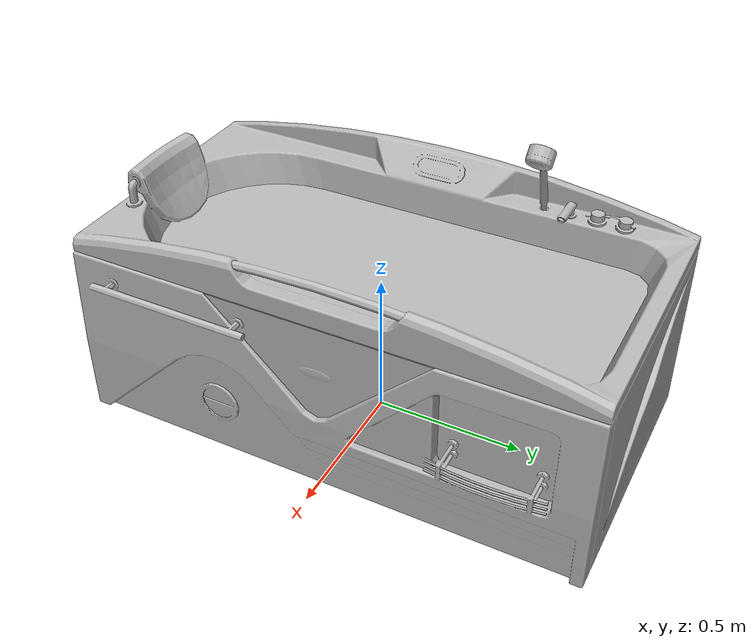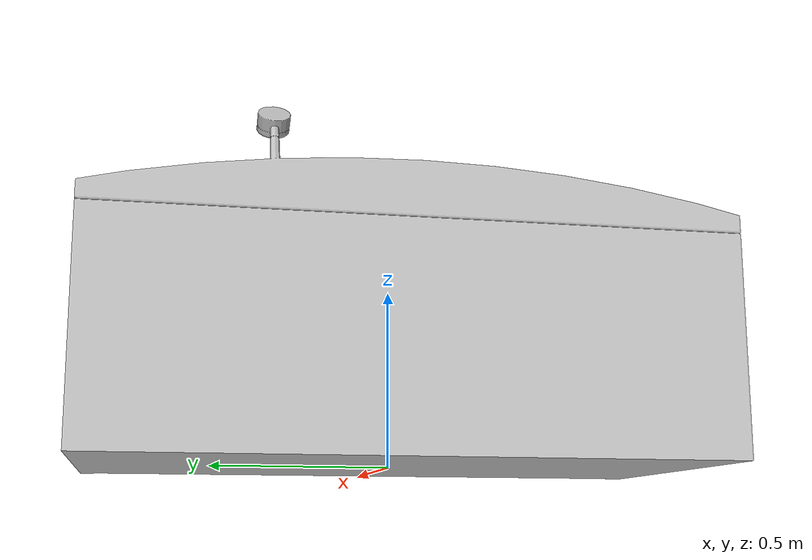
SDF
<?xml version='1.0'?>
<sdf version='1.4'>
  <model name='s__1697'>
    <pose>0 0 0 0 0 0</pose>
    <static>true</static>
    <link name='link'>
      <collision name='collision'>
        <pose>0 0 0 0 0 0</pose>
        <geometry>
          <box>
            <size>0.97 1.75974 2</size>
          </box>
        </geometry>
      </collision>
      <visual name='visual'>
        <pose>0 0 0 0 0 0</pose>
        <geometry>
          <mesh><uri>model://s__1697/s__1697.dae</uri></mesh>
        </geometry>
      </visual>
    </link>
  </model>
</sdf>
